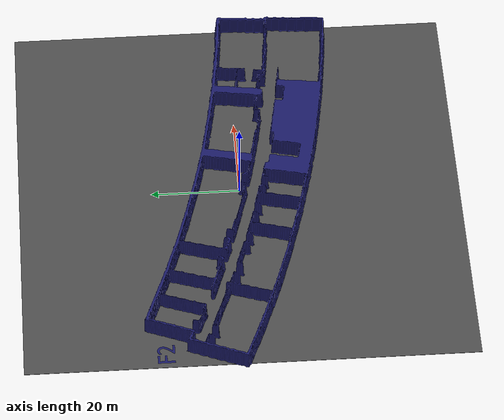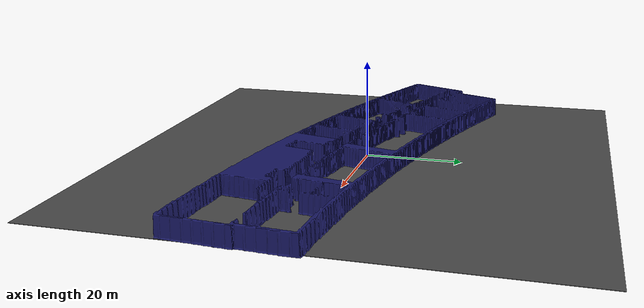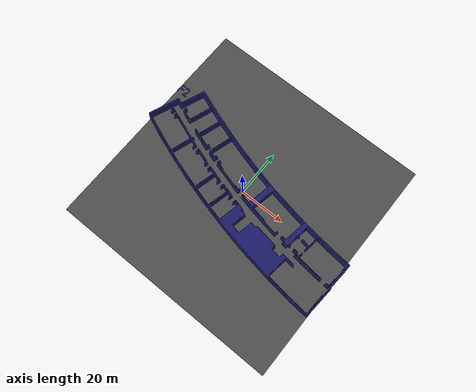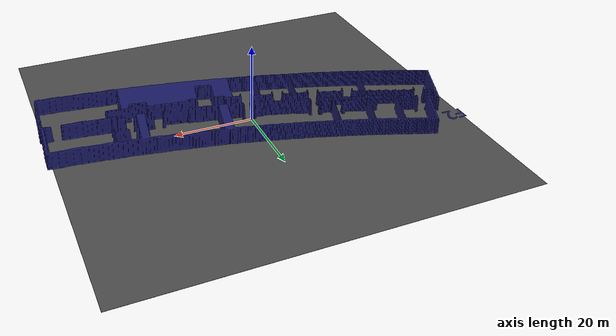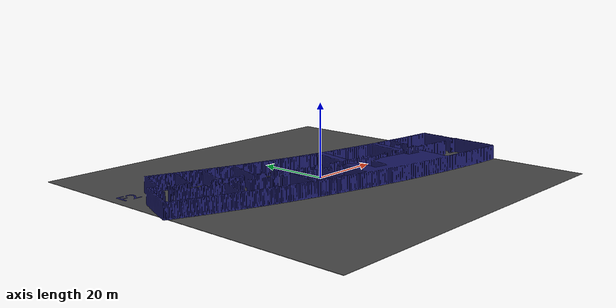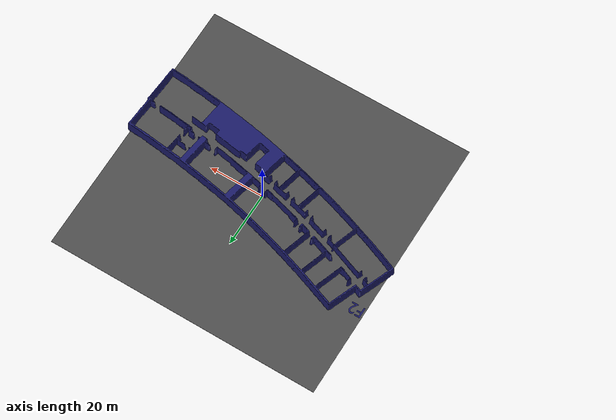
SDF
<?xml version="1.0" ?>
<sdf version="1.7">
  <world name="celisca_floor_2">
    <pose>0.4393 0.4394 -0.677 0 0 0</pose>

    <light name="sun" type="directional">
      <cast_shadows>true</cast_shadows>
      <pose>0 0 10 0 0 0</pose>
      <diffuse>0.8 0.8 0.8 1</diffuse>
      <specular>0.3 0.3 0.3 1</specular>
      <direction>-0.5 0.3 -1.0</direction>
    </light>

    <model name="physics_floor">
      <static>true</static>
      <pose>0 0 -0.05 0 0 0</pose>
      <link name="link">
        <collision name="collision">
          <geometry>
            <box><size>100 100 0.1</size></box>
          </geometry>
          <surface>
            <friction>
              <ode>
                <mu>100</mu>
                <mu2>50</mu2>
              </ode>
            </friction>
          </surface>
        </collision>
        <visual name="visual">
          <geometry>
            <box><size>100 100 0.1</size></box>
          </geometry>
          <material>
            <ambient>0.3 0.3 0.3 1</ambient>
            <diffuse>0.3 0.3 0.3 1</diffuse>
          </material>
        </visual>
      </link>
    </model>

    <model name="celisca_floor_2">
      <static>true</static>
      <link name="link">

        <visual name="visual">
          <geometry>
            <mesh>
              <uri>package://maps/maps/celisca_f2_actor/meshes/celisca_floor_2.stl</uri>
              <scale>3 3 3</scale>
            </mesh>
          </geometry>
          <material>
            <ambient>0.2 0.2 0.5 1.0</ambient>
            <diffuse>0.1 0.1 0.4 1.0</diffuse>
            <specular>0.05 0.05 0.1 1.0</specular>
          </material>
        </visual>

        <!-- REQUIRED FOR NAV TO WORK -->
        <visual name="visual_backfaces">
          <geometry>
            <mesh>
              <uri>package://maps/maps/celisca_f2_actor/meshes/celisca_floor_2.stl</uri>
              <scale>3 3 3</scale>
            </mesh>
          </geometry>
          <material>
            <ambient>0.2 0.2 0.5 1.0</ambient>
            <diffuse>0.1 0.1 0.4 1.0</diffuse>
            <specular>0.05 0.05 0.1 1.0</specular>
          </material>
        </visual>

        <collision name="collision">
          <geometry>
            <mesh>
              <uri>package://maps/maps/celisca_f2_actor/meshes/celisca_floor_2.stl</uri>
              <scale>3 3 3</scale>
            </mesh>
          </geometry>
        </collision>
      </link>
    </model>

  </world>
</sdf>
